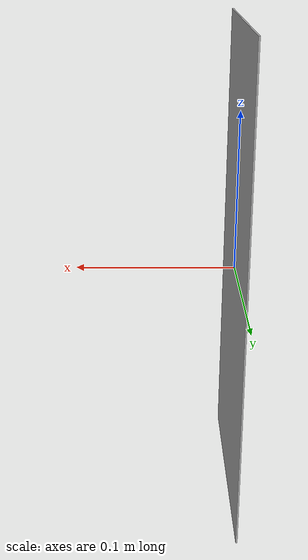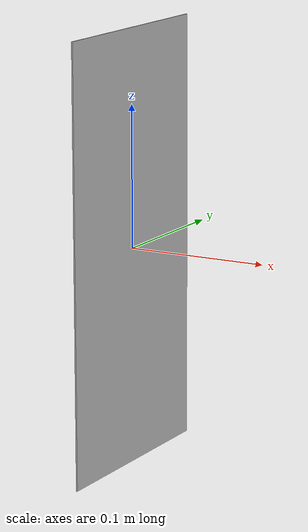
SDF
<?xml version="1.0"?>
<sdf version="1.7">
    <model name="torpedo-bootlegger">
        <link name="base_link">
            <pose>0 0 0 0 0 0</pose>
            <gravity>0</gravity>
            <inertial>
                <mass>1</mass>
            </inertial>
            <visual name='cube_visual'>
                <geometry>
                    <box>
                        <size>0.001 0.1524 0.3048</size>
                    </box>
                </geometry>
                <material>
                    <color rgba="0.5 0.5 0.5 0.0"/>
                    <script>
                        <uri>model://torpedo-bootlegger/materials/scripts</uri>
                        <uri>model://torpedo-bootlegger/materials/textures</uri>
                        <name>torpedoBootlegger/Diffuse</name>
                    </script>
                </material>
            </visual>
            <collision name='cube_collision'>
                <geometry>
                    <box>
                        <size>0.001 1 1</size>
                    </box>
                </geometry>
            </collision>
        </link>
        <plugin name="gazebo_force_controller" filename="libgazebo_ros_force.so">
            <ros>
                <namespace>/steelhead/gazebo_drivers</namespace>
                <remapping>gazebo_ros_force:=force</remapping>
            </ros>
            <link_name>base_link</link_name>
            <force_frame>world</force_frame>
        </plugin>
    </model>
</sdf>
